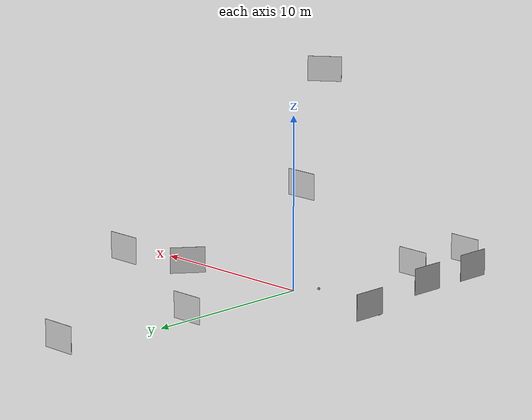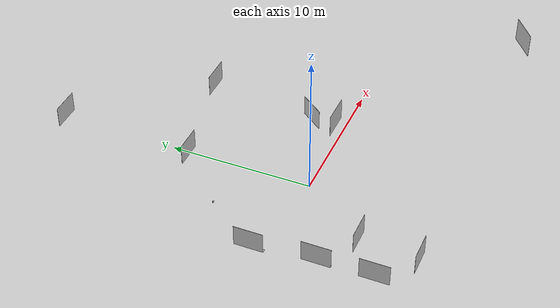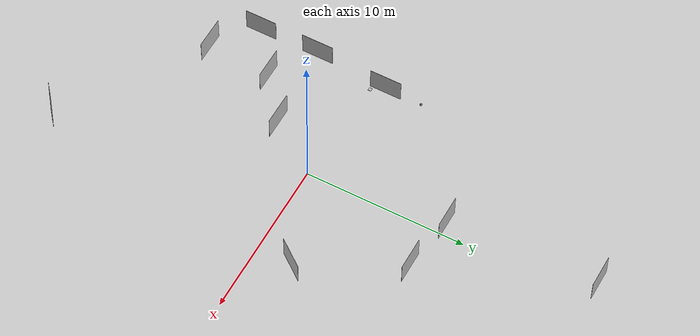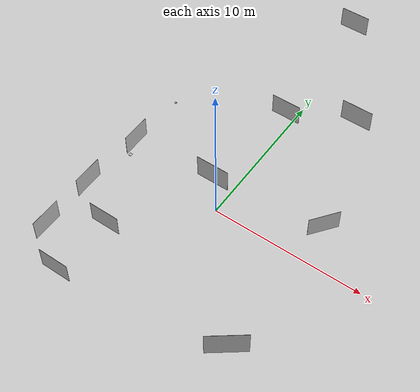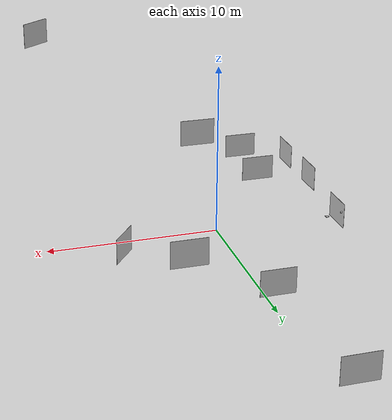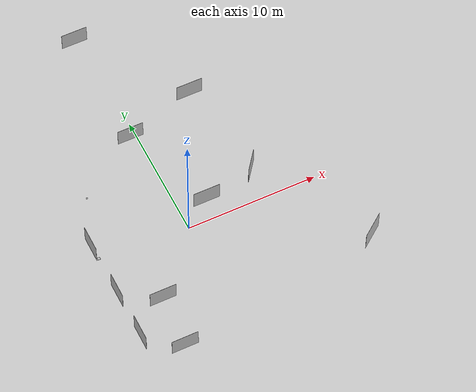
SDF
<sdf version="1.6">
 <world name="default">
  <scene>
   <sky><clouds><speed>12</speed></clouds></sky>
   <grid>false</grid>
   <origin_visual>false</origin_visual>
  </scene>
  <include><uri>model://sun</uri></include>
  <model name="slide-0">
   <pose>-4.6 -9.09 0 0 -0 0</pose>
   <static>1</static>
   <link name="link">
    <pose>0 0 1.5 0 -0 0</pose>
    <collision name="collision"><geometry><box><size>2 0.01 1.5</size></box></geometry></collision>
    <visual name="visual">
     <geometry><box><size>2 0.01 1.5</size></box></geometry>
     <material>
      <script>
       <uri>model://slide-0/materials/scripts</uri>
       <uri>model://slide-0/materials/textures</uri>
       <name>Slides/slide_0</name>
      </script>
     </material>
    </visual>
   </link>
  </model>
  <model name="slide-1">
   <static>1</static>
   <link name="link">
    <pose>0 0 1.5 0 -0 0</pose>
    <collision name="collision"><geometry><box><size>2 0.01 1.5</size></box></geometry></collision>
    <visual name="visual">
     <geometry><box><size>2 0.01 1.5</size></box></geometry>
     <material>
      <script>
       <uri>model://slide-1/materials/scripts</uri>
       <uri>model://slide-1/materials/textures</uri>
       <name>Slides/slide_1</name>
      </script>
     </material>
    </visual>
   </link>
   <pose>-7.03 -7.02 0 0 -0 1.57</pose>
  </model>
  <model name="slide-2">
   <static>1</static>
   <link name="link">
    <pose>0 0 1.5 0 -0 0</pose>
    <collision name="collision"><geometry><box><size>2 0.01 1.5</size></box></geometry></collision>
    <visual name="visual">
     <geometry><box><size>2 0.01 1.5</size></box></geometry>
     <material>
      <script>
       <uri>model://slide-2/materials/scripts</uri>
       <uri>model://slide-2/materials/textures</uri>
       <name>Slides/slide_2</name>
      </script>
     </material>
    </visual>
   </link>
   <pose>-4.35 -5.02 0 0 -0 0</pose>
  </model>
  <model name="slide-5">
   <static>1</static>
   <link name="link">
    <pose>0 0 1.5 0 -0 0</pose>
    <collision name="collision"><geometry><box><size>2 0.01 1.5</size></box></geometry></collision>
    <visual name="visual">
     <geometry><box><size>2 0.01 1.5</size></box></geometry>
     <material>
      <script>
       <uri>model://slide-5/materials/scripts</uri>
       <uri>model://slide-5/materials/textures</uri>
       <name>Slides/slide_5</name>
      </script>
     </material>
    </visual>
   </link>
   <pose>-7.03 1.28 -0.497 0 0 1.57</pose>
  </model>
  <model name="slide-4">
   <static>1</static>
   <link name="link">
    <pose>0 0 1.5 0 -0 0</pose>
    <collision name="collision"><geometry><box><size>2 0.01 1.5</size></box></geometry></collision>
    <visual name="visual">
     <geometry><box><size>2 0.01 1.5</size></box></geometry>
     <material>
      <script>
       <uri>model://slide-4/materials/scripts</uri>
       <uri>model://slide-4/materials/textures</uri>
       <name>Slides/slide_4</name>
      </script>
     </material>
    </visual>
   </link>
   <pose>0.774 -1.402 4.223 0 0 0</pose>
  </model>
  <model name="slide-3">
   <static>1</static>
   <link name="link">
    <pose>0 0 1.5 0 -0 0</pose>
    <collision name="collision"><geometry><box><size>2 0.01 1.5</size></box></geometry></collision>
    <visual name="visual">
     <geometry><box><size>2 0.01 1.5</size></box></geometry>
     <material>
      <script>
       <uri>model://slide-3/materials/scripts</uri>
       <uri>model://slide-3/materials/textures</uri>
       <name>Slides/slide_3</name>
      </script>
     </material>
    </visual>
   </link>
   <pose>-7.065 -3.26 0 0 -0 1.57</pose>
  </model>
  <model name="slide-7">
   <static>1</static>
   <link name="link">
    <pose>0 0 1.5 0 -0 0</pose>
    <collision name="collision"><geometry><box><size>2 0.01 1.5</size></box></geometry></collision>
    <visual name="visual">
     <geometry><box><size>2 0.01 1.5</size></box></geometry>
     <material>
      <script>
       <uri>model://slide-7/materials/scripts</uri>
       <uri>model://slide-7/materials/textures</uri>
       <name>Slides/slide_7</name>
      </script>
     </material>
    </visual>
   </link>
   <pose>8.37 -11.05 8.108 0 0 0.6466</pose>
  </model>
  <model name="slide-8">
   <static>1</static>
   <link name="link">
    <pose>0 0 1.5 0 -0 0</pose>
    <collision name="collision"><geometry><box><size>2 0.01 1.5</size></box></geometry></collision>
    <visual name="visual">
     <geometry><box><size>2 0.01 1.5</size></box></geometry>
     <material>
      <script>
       <uri>model://slide-8/materials/scripts</uri>
       <uri>model://slide-8/materials/textures</uri>
       <name>Slides/slide_8</name>
      </script>
     </material>
    </visual>
   </link>
   <pose>-0.80 17.93 0 0 -0 0</pose>
  </model>
  <model name="slide-9">
   <static>1</static>
   <link name="link">
    <pose>0 0 1.5 0 -0 0</pose>
    <collision name="collision"><geometry><box><size>2 0.01 1.5</size></box></geometry></collision>
    <visual name="visual">
     <geometry><box><size>2 0.01 1.5</size></box></geometry>
     <material>
      <script>
       <uri>model://slide-9/materials/scripts</uri>
       <uri>model://slide-9/materials/textures</uri>
       <name>Slides/slide_9</name>
      </script>
     </material>
    </visual>
   </link>
   <pose>4.28 8.78 1.88 0 -0 0</pose>
  </model>
  <model name="slide-6">
   <static>1</static>
   <link name="link">
    <pose>0 0 1.5 0 -0 0</pose>
    <collision name="collision"><geometry><box><size>2 0.01 1.5</size></box></geometry></collision>
    <visual name="visual">
     <geometry><box><size>2 0.01 1.5</size></box></geometry>
     <material>
      <script>
       <uri>model://slide-6/materials/scripts</uri>
       <uri>model://slide-6/materials/textures</uri>
       <name>Slides/slide_6</name>
      </script>
     </material>
    </visual>
   </link>
   <pose>-0.535 8.64 -0.51 0 0 0</pose>
  </model>
  <model name="slide-10">
   <static>1</static>
   <link name="link">
    <pose>0 0 1.5 0 -0 0</pose>
    <collision name="collision"><geometry><box><size>2 0.01 1.5</size></box></geometry></collision>
    <visual name="visual">
     <geometry><box><size>2 0.01 1.5</size></box></geometry>
     <material>
      <script>
       <uri>model://slide-10/materials/scripts</uri>
       <uri>model://slide-10/materials/textures</uri>
       <name>Slides/slide_10</name>
      </script>
     </material>
    </visual>
   </link>
   <pose>6.09 2.32 -0.488 0 0 -2.22</pose>
  </model>
  <light name="spot_light_slide-10" type="spot">
   <pose>3.61 4.54 3.02 -0.707 -0.75 0.207</pose>
   <diffuse>0.5 0.5 0.5 1</diffuse>
   <specular>0.1 0.1 0.1 1</specular>
   <direction>0 0 -1</direction>
   <attenuation>
    <range>20</range>
    <constant>1.0</constant>
    <linear>0.01</linear>
    <quadratic>0.001</quadratic>
   </attenuation>
   <cast_shadows>0</cast_shadows>
   <spot><inner_angle>0.6</inner_angle><outer_angle>1</outer_angle><falloff>1</falloff></spot>
  </light>
  <model name="camera">
   <static>true</static>
   <pose>-5.97 4.11 2.25 0.015 0.546 -1.967</pose>
   <link name="link">
    <collision name="collision"><geometry><box><size>0.1 0.1 0.1</size></box></geometry></collision>
    <visual name="visual"><geometry><box><size>0.1 0.1 0.1</size></box></geometry></visual>
    <sensor name="camera" type="camera">
     <camera>
      <horizontal_fov>1.047</horizontal_fov>
      <image><width>320</width><height>240</height></image>
      <clip><near>0.1</near><far>100</far></clip>
     </camera>
     <always_on>1</always_on>
     <update_rate>30</update_rate>
     <visualize>true</visualize>
    </sensor>
   </link>
  </model>
  <model name="contact">
   <static>true</static>
   <pose>-6.838 0.3817 0.2 0 0 0</pose>
   <link name="link">
    <collision name="collision">
     <geometry><box><size>0.2 0.2 0.03</size></box></geometry>
     <surface>
      <bounce><restitution_coefficient>1.0</restitution_coefficient><threshold>0</threshold></bounce>
      <contact><ode><max_vel>10000</max_vel><min_depth>0.001</min_depth></ode></contact>
     </surface>
    </collision>
    <visual name="visual"><geometry><box><size>0.2 0.2 0.03</size></box></geometry></visual>
    <sensor name="contact_sensor" type="contact"><contact><collision>collision</collision></contact></sensor>
   </link>
  </model>
 </world>
</sdf>
